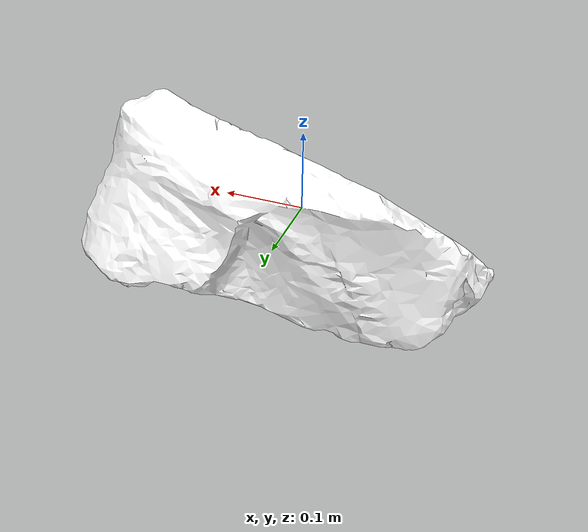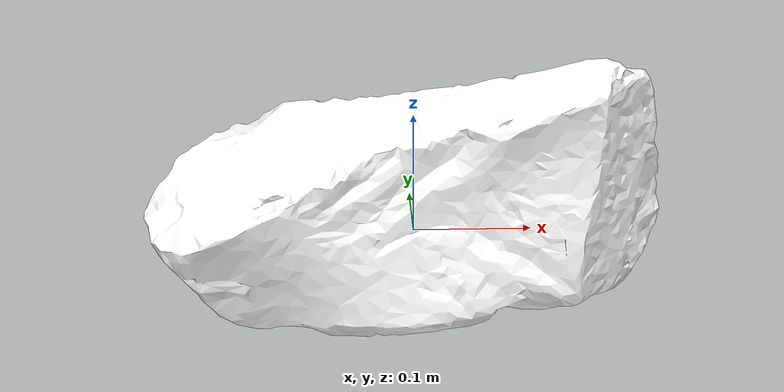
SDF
<?xml version="1.0" ?>
<sdf version="1.9">
  <model name="rock_4">
    <static>true</static>
    <link name="rock_link">
      <!-- Visual -->
      <visual name="visual">
        <geometry>
          <mesh>
            <uri>model://rock_4/meshes/rock_4.obj</uri>
          </mesh>
        </geometry>
        <material>
          <ambient>1 1 1 1</ambient>
          <diffuse>1 1 1 1</diffuse>
          <pbr>
            <metal>
              <albedo_map>model://rock_4/meshes/rock_4_diffuse.jpg</albedo_map>
            </metal>
          </pbr>
        </material>
      </visual>
      <!-- Collision -->
      <collision name="collision">
        <geometry>
          <mesh>
            <uri>model://rock_4/meshes/rock_4.obj</uri>
          </mesh>
        </geometry>
      </collision>
    </link>
  </model>
</sdf>
